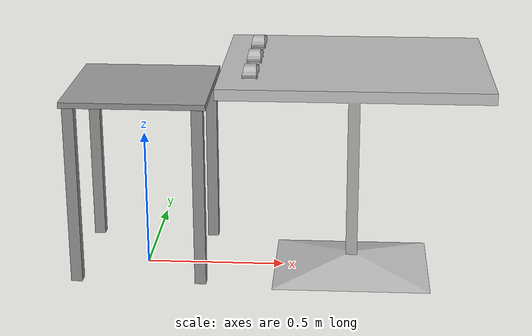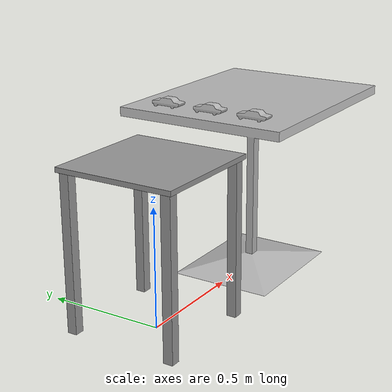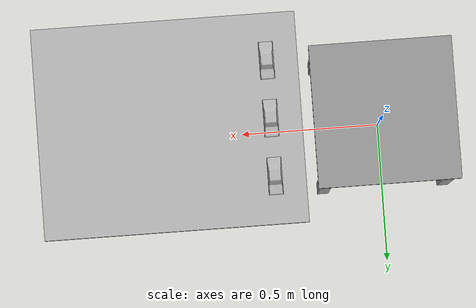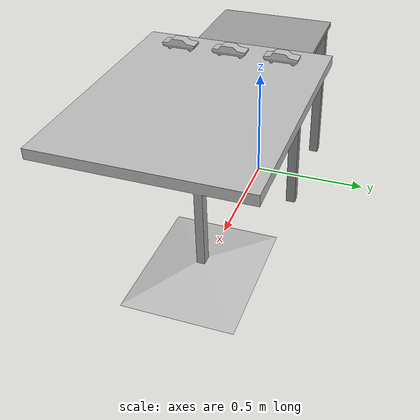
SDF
<sdf version="1.6">
 <world name="ur3_cars">
  <gravity>0 0 -9.81</gravity>
  <physics name="default_physics" default="0" type="ode">
   <max_step_size>0.001</max_step_size>
   <real_time_factor>1</real_time_factor>
   <real_time_update_rate>1000</real_time_update_rate>
  </physics>
  <plugin name="ros_link_attacher_plugin" filename="libgazebo_ros_link_attacher.so"/>
  <scene><ambient>0.4 0.4 0.4 1</ambient><background>0.40 0.43 0.67 1</background><shadows>1</shadows></scene>
  <include><uri>model://sun</uri></include>
  <model name="ur_base"><include><uri>model://ur_base</uri></include></model>
  <model name="cafe_table">
   <link name="cafe_table::link">
    <pose>0.75 0 0 0 -0 0</pose>
    <inertial>
     <mass>1</mass>
     <inertia><ixx>1</ixx><ixy>0</ixy><ixz>0</ixz><iyy>1</iyy><iyz>0</iyz><izz>1</izz></inertia>
    </inertial>
    <visual name="visual">
     <geometry><mesh><uri>model://cafe_table/meshes/cafe_table.dae</uri><scale>1 0.8 1</scale></mesh></geometry>
     <material><shader type="pixel"><normal_map>__default__</normal_map></shader></material>
    </visual>
    <collision name="surface">
     <pose>0 0 0.755 0 -0 0</pose>
     <geometry><box><size>0.913 0.913 0.04</size></box></geometry>
     <surface>
      <friction>
       <ode><mu>1</mu><mu2>1</mu2><fdir1>0 0 0</fdir1><slip1>0</slip1><slip2>0</slip2></ode>
       <torsional>
        <coefficient>1</coefficient>
        <patch_radius>0</patch_radius>
        <surface_radius>0</surface_radius>
        <use_patch_radius>1</use_patch_radius>
        <ode><slip>0</slip></ode>
       </torsional>
      </friction>
      <bounce><restitution_coefficient>0</restitution_coefficient><threshold>1e+06</threshold></bounce>
      <contact>
       <collide_without_contact>0</collide_without_contact>
       <collide_without_contact_bitmask>1</collide_without_contact_bitmask>
       <collide_bitmask>1</collide_bitmask>
       <ode>
        <soft_cfm>0</soft_cfm>
        <soft_erp>0.2</soft_erp>
        <kp>1e+13</kp>
        <kd>1</kd>
        <max_vel>0.01</max_vel>
        <min_depth>0</min_depth>
       </ode>
       <bullet>
        <split_impulse>1</split_impulse>
        <split_impulse_penetration_threshold>-0.01</split_impulse_penetration_threshold>
        <soft_cfm>0</soft_cfm>
        <soft_erp>0.2</soft_erp>
        <kp>1e+13</kp>
        <kd>1</kd>
       </bullet>
      </contact>
     </surface>
    </collision>
    <collision name="column">
     <pose>0 0 0.37 0 -0 0</pose>
     <geometry><box><size>0.042 0.042 0.74</size></box></geometry>
     <surface>
      <friction>
       <ode><mu>1</mu><mu2>1</mu2><fdir1>0 0 0</fdir1><slip1>0</slip1><slip2>0</slip2></ode>
       <torsional>
        <coefficient>1</coefficient>
        <patch_radius>0</patch_radius>
        <surface_radius>0</surface_radius>
        <use_patch_radius>1</use_patch_radius>
        <ode><slip>0</slip></ode>
       </torsional>
      </friction>
      <bounce><restitution_coefficient>0</restitution_coefficient><threshold>1e+06</threshold></bounce>
      <contact>
       <collide_without_contact>0</collide_without_contact>
       <collide_without_contact_bitmask>1</collide_without_contact_bitmask>
       <collide_bitmask>1</collide_bitmask>
       <ode>
        <soft_cfm>0</soft_cfm>
        <soft_erp>0.2</soft_erp>
        <kp>1e+13</kp>
        <kd>1</kd>
        <max_vel>0.01</max_vel>
        <min_depth>0</min_depth>
       </ode>
       <bullet>
        <split_impulse>1</split_impulse>
        <split_impulse_penetration_threshold>-0.01</split_impulse_penetration_threshold>
        <soft_cfm>0</soft_cfm>
        <soft_erp>0.2</soft_erp>
        <kp>1e+13</kp>
        <kd>1</kd>
       </bullet>
      </contact>
     </surface>
    </collision>
    <collision name="base">
     <pose>0 0 0.02 0 -0 0</pose>
     <geometry><box><size>0.56 0.56 0.04</size></box></geometry>
     <surface>
      <friction>
       <ode><mu>1</mu><mu2>1</mu2><fdir1>0 0 0</fdir1><slip1>0</slip1><slip2>0</slip2></ode>
       <torsional>
        <coefficient>1</coefficient>
        <patch_radius>0</patch_radius>
        <surface_radius>0</surface_radius>
        <use_patch_radius>1</use_patch_radius>
        <ode><slip>0</slip></ode>
       </torsional>
      </friction>
      <bounce><restitution_coefficient>0</restitution_coefficient><threshold>1e+06</threshold></bounce>
      <contact>
       <collide_without_contact>0</collide_without_contact>
       <collide_without_contact_bitmask>1</collide_without_contact_bitmask>
       <collide_bitmask>1</collide_bitmask>
       <ode>
        <soft_cfm>0</soft_cfm>
        <soft_erp>0.2</soft_erp>
        <kp>1e+13</kp>
        <kd>1</kd>
        <max_vel>0.01</max_vel>
        <min_depth>0</min_depth>
       </ode>
       <bullet>
        <split_impulse>1</split_impulse>
        <split_impulse_penetration_threshold>-0.01</split_impulse_penetration_threshold>
        <soft_cfm>0</soft_cfm>
        <soft_erp>0.2</soft_erp>
        <kp>1e+13</kp>
        <kd>1</kd>
       </bullet>
      </contact>
     </surface>
    </collision>
   </link>
   <static>1</static>
  </model>
  <model name="car_model_1"><pose>0.4 -0.2 0.775 0 0 0</pose><include><uri>model://car</uri></include></model>
  <model name="car_model_2"><pose>0.4 0 0.775 0 0 0</pose><include><uri>model://car</uri></include></model>
  <model name="car_model_3"><pose>0.4 0.2 0.775 0 0 0</pose><include><uri>model://car</uri></include></model>
 </world>
</sdf>

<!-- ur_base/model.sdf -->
<sdf version="1.6">
  <model name="ur_base">
    <static>true</static>

    <link name="top_plate">
      <pose>0 0 0.67501 0 0 0</pose>
      <collision name="top_plate_collision">
        <geometry>
          <box>
            <size>0.5 0.5 0.02</size>
          </box>
        </geometry>
        <surface>
          <contact>
            <collide_bitmask>0x01</collide_bitmask>
          </contact>
        </surface>
      </collision>
      <visual name="top_plate_visual">
        <geometry>
          <box>
            <size>0.5 0.5 0.02</size>
          </box>
        </geometry>
        <material>
          <script>
            <uri>file://media/materials/scripts/gazebo.material</uri>
            <name>Gazebo/Grey</name>
          </script>
        </material>
      </visual>
    </link>
    <link name="leg1">
      <pose>0.22 0.22 0.35 0 0 0</pose>
      <visual name="leg1_visual">
        <geometry>
          <box>
            <size>0.04 0.04 0.655</size>
          </box>
        </geometry>
        <material>
          <script>
            <uri>file://media/materials/scripts/gazebo.material</uri>
            <name>Gazebo/Grey</name>
          </script>
        </material>
      </visual>
    </link>
    <link name="leg2">
      <pose>-0.22 0.22 0.35 0 0 0</pose>
      <visual name="leg2_visual">
        <geometry>
          <box>
            <size>0.04 0.04 0.655</size>
          </box>
        </geometry>
        <material>
          <script>
            <uri>file://media/materials/scripts/gazebo.material</uri>
            <name>Gazebo/Grey</name>
          </script>
        </material>
      </visual>
    </link>
    <link name="leg3">
      <pose>0.22 -0.22 0.35 0 0 0</pose>
      <visual name="leg3_visual">
        <geometry>
          <box>
            <size>0.04 0.04 0.655</size>
          </box>
        </geometry>
        <material>
          <script>
            <uri>file://media/materials/scripts/gazebo.material</uri>
            <name>Gazebo/Grey</name>
          </script>
        </material>
      </visual>
    </link>
    <link name="leg4">
      <pose>-0.22 -0.22 0.35 0 0 0</pose>
      <visual name="leg4_visual">
        <geometry>
          <box>
            <size>0.04 0.04 0.655</size>
          </box>
        </geometry>
        <material>
          <script>
            <uri>file://media/materials/scripts/gazebo.material</uri>
            <name>Gazebo/Grey</name>
          </script>
        </material>
      </visual>
    </link>
  </model>
</sdf>

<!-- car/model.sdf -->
<sdf version='1.7'>
  <model name='car'>
    <link name='dummy'>
      <inertial>
        <pose>-1e-06 -0.000109 0.019502 0 -0 0</pose>
        <mass>0.150621</mass>
        <inertia>
          <ixx>0.000169</ixx>
          <ixy>3.23117e-27</ixy>
          <ixz>0</ixz>
          <iyy>3.9e-05</iyy>
          <iyz>2e-06</iyz>
          <izz>0.000189</izz>
        </inertia>
      </inertial>
      <collision name='dummy_fixed_joint_lump__base_link_collision'>
        <pose>0 0 0 0 -0 0</pose>
        <geometry>
          <mesh>
            <scale>0.001 0.001 0.001</scale>
            <uri>model://car/meshes/base_link.stl</uri>
          </mesh>
        </geometry>
      </collision>
      <visual name='dummy_fixed_joint_lump__base_link_visual'>
        <pose>0 0 0 0 -0 0</pose>
        <geometry>
          <mesh>
            <scale>0.001 0.001 0.001</scale>
            <uri>model://car/meshes/base_link.stl</uri>
          </mesh>
        </geometry>
      </visual>
    </link>
  </model>
</sdf>
